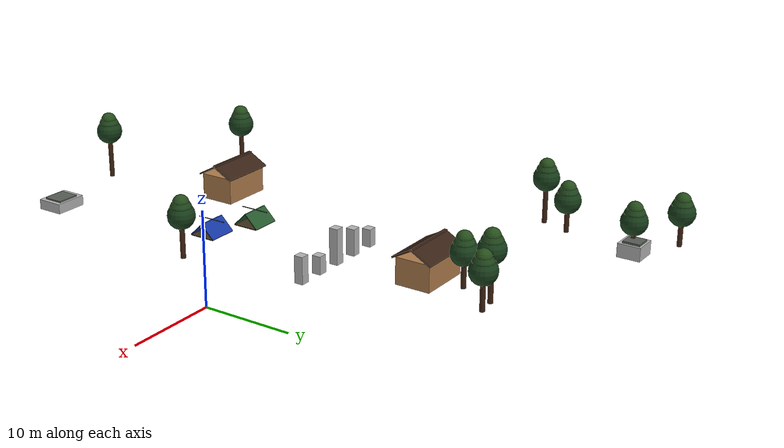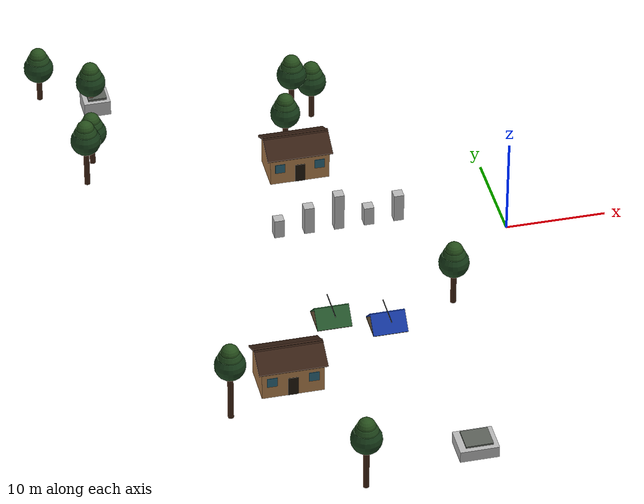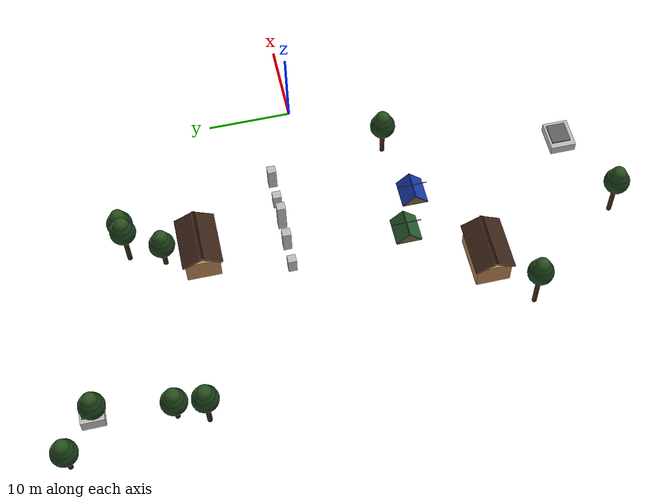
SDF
<sdf version="1.5">
 <world name="forest_rescue">
  <include><uri>model://sun</uri></include>
  <model name="pine_03">
   <static>true</static>
   <pose>-8 -10 .003 0 0 0</pose>
   <link name="structure">
    <visual name="trunk_visual">
     <pose>0 0 2.935254207408066 0.0 0 0</pose>
     <geometry><cylinder><radius>0.28</radius><length>5.870508414816132</length></cylinder></geometry>
     <material><ambient>0.24 0.13 0.07 1</ambient><diffuse>0.24 0.13 0.07 1</diffuse></material>
    </visual>
    <collision name="trunk_collision">
     <pose>0 0 2.935254207408066 0.0 0 0</pose>
     <geometry><cylinder><radius>0.28</radius><length>5.870508414816132</length></cylinder></geometry>
    </collision>
    <visual name="canopy0_visual">
     <pose>0 0 4.770508414816131 0.0 0 0</pose>
     <geometry><sphere><radius>1.5</radius></sphere></geometry>
     <material><ambient>0.1 0.25 0.11 1</ambient><diffuse>0.1 0.25 0.11 1</diffuse></material>
    </visual>
    <collision name="canopy0_collision">
     <pose>0 0 4.770508414816131 0.0 0 0</pose>
     <geometry><sphere><radius>1.5</radius></sphere></geometry>
    </collision>
    <visual name="canopy1_visual">
     <pose>0 0 5.470508414816131 0.0 0 0</pose>
     <geometry><sphere><radius>1.2</radius></sphere></geometry>
     <material><ambient>0.125 0.28 0.11 1</ambient><diffuse>0.125 0.28 0.11 1</diffuse></material>
    </visual>
    <collision name="canopy1_collision">
     <pose>0 0 5.470508414816131 0.0 0 0</pose>
     <geometry><sphere><radius>1.2</radius></sphere></geometry>
    </collision>
    <visual name="canopy2_visual">
     <pose>0 0 6.1705084148161315 0.0 0 0</pose>
     <geometry><sphere><radius>0.9</radius></sphere></geometry>
     <material>
      <ambient>0.15000000000000002 0.31 0.11 1</ambient>
      <diffuse>0.15000000000000002 0.31 0.11 1</diffuse>
     </material>
    </visual>
    <collision name="canopy2_collision">
     <pose>0 0 6.1705084148161315 0.0 0 0</pose>
     <geometry><sphere><radius>0.9</radius></sphere></geometry>
    </collision>
   </link>
  </model>
  <model name="pine_06">
   <static>true</static>
   <pose>-18.092217512255967 18.093078929427023 .003 0 0 0</pose>
   <link name="structure">
    <visual name="trunk_visual">
     <pose>0 0 2.513902598496842 0.0 0 0</pose>
     <geometry><cylinder><radius>0.28</radius><length>5.027805196993684</length></cylinder></geometry>
     <material><ambient>0.24 0.13 0.07 1</ambient><diffuse>0.24 0.13 0.07 1</diffuse></material>
    </visual>
    <collision name="trunk_collision">
     <pose>0 0 2.513902598496842 0.0 0 0</pose>
     <geometry><cylinder><radius>0.28</radius><length>5.027805196993684</length></cylinder></geometry>
    </collision>
    <visual name="canopy0_visual">
     <pose>0 0 3.9278051969936842 0.0 0 0</pose>
     <geometry><sphere><radius>1.5</radius></sphere></geometry>
     <material><ambient>0.1 0.25 0.11 1</ambient><diffuse>0.1 0.25 0.11 1</diffuse></material>
    </visual>
    <collision name="canopy0_collision">
     <pose>0 0 3.9278051969936842 0.0 0 0</pose>
     <geometry><sphere><radius>1.5</radius></sphere></geometry>
    </collision>
    <visual name="canopy1_visual">
     <pose>0 0 4.627805196993684 0.0 0 0</pose>
     <geometry><sphere><radius>1.2</radius></sphere></geometry>
     <material><ambient>0.125 0.28 0.11 1</ambient><diffuse>0.125 0.28 0.11 1</diffuse></material>
    </visual>
    <collision name="canopy1_collision">
     <pose>0 0 4.627805196993684 0.0 0 0</pose>
     <geometry><sphere><radius>1.2</radius></sphere></geometry>
    </collision>
    <visual name="canopy2_visual">
     <pose>0 0 5.327805196993684 0.0 0 0</pose>
     <geometry><sphere><radius>0.9</radius></sphere></geometry>
     <material>
      <ambient>0.15000000000000002 0.31 0.11 1</ambient>
      <diffuse>0.15000000000000002 0.31 0.11 1</diffuse>
     </material>
    </visual>
    <collision name="canopy2_collision">
     <pose>0 0 5.327805196993684 0.0 0 0</pose>
     <geometry><sphere><radius>0.9</radius></sphere></geometry>
    </collision>
   </link>
  </model>
  <model name="pine_07">
   <static>true</static>
   <pose>-40.683437024014694 31.48853568867973 .003 0 0 0</pose>
   <link name="structure">
    <visual name="trunk_visual">
     <pose>0 0 2.4432136218094076 0.0 0 0</pose>
     <geometry><cylinder><radius>0.28</radius><length>4.886427243618815</length></cylinder></geometry>
     <material><ambient>0.24 0.13 0.07 1</ambient><diffuse>0.24 0.13 0.07 1</diffuse></material>
    </visual>
    <collision name="trunk_collision">
     <pose>0 0 2.4432136218094076 0.0 0 0</pose>
     <geometry><cylinder><radius>0.28</radius><length>4.886427243618815</length></cylinder></geometry>
    </collision>
    <visual name="canopy0_visual">
     <pose>0 0 3.786427243618815 0.0 0 0</pose>
     <geometry><sphere><radius>1.5</radius></sphere></geometry>
     <material><ambient>0.1 0.25 0.11 1</ambient><diffuse>0.1 0.25 0.11 1</diffuse></material>
    </visual>
    <collision name="canopy0_collision">
     <pose>0 0 3.786427243618815 0.0 0 0</pose>
     <geometry><sphere><radius>1.5</radius></sphere></geometry>
    </collision>
    <visual name="canopy1_visual">
     <pose>0 0 4.486427243618815 0.0 0 0</pose>
     <geometry><sphere><radius>1.2</radius></sphere></geometry>
     <material><ambient>0.125 0.28 0.11 1</ambient><diffuse>0.125 0.28 0.11 1</diffuse></material>
    </visual>
    <collision name="canopy1_collision">
     <pose>0 0 4.486427243618815 0.0 0 0</pose>
     <geometry><sphere><radius>1.2</radius></sphere></geometry>
    </collision>
    <visual name="canopy2_visual">
     <pose>0 0 5.186427243618815 0.0 0 0</pose>
     <geometry><sphere><radius>0.9</radius></sphere></geometry>
     <material>
      <ambient>0.15000000000000002 0.31 0.11 1</ambient>
      <diffuse>0.15000000000000002 0.31 0.11 1</diffuse>
     </material>
    </visual>
    <collision name="canopy2_collision">
     <pose>0 0 5.186427243618815 0.0 0 0</pose>
     <geometry><sphere><radius>0.9</radius></sphere></geometry>
    </collision>
   </link>
  </model>
  <model name="pine_13">
   <static>true</static>
   <pose>-32.37896573624593 -21.87479106920818 .003 0 0 0</pose>
   <link name="structure">
    <visual name="trunk_visual">
     <pose>0 0 3.6688731987273866 0.0 0 0</pose>
     <geometry><cylinder><radius>0.28</radius><length>7.337746397454773</length></cylinder></geometry>
     <material><ambient>0.24 0.13 0.07 1</ambient><diffuse>0.24 0.13 0.07 1</diffuse></material>
    </visual>
    <collision name="trunk_collision">
     <pose>0 0 3.6688731987273866 0.0 0 0</pose>
     <geometry><cylinder><radius>0.28</radius><length>7.337746397454773</length></cylinder></geometry>
    </collision>
    <visual name="canopy0_visual">
     <pose>0 0 6.237746397454773 0.0 0 0</pose>
     <geometry><sphere><radius>1.5</radius></sphere></geometry>
     <material><ambient>0.1 0.25 0.11 1</ambient><diffuse>0.1 0.25 0.11 1</diffuse></material>
    </visual>
    <collision name="canopy0_collision">
     <pose>0 0 6.237746397454773 0.0 0 0</pose>
     <geometry><sphere><radius>1.5</radius></sphere></geometry>
    </collision>
    <visual name="canopy1_visual">
     <pose>0 0 6.937746397454773 0.0 0 0</pose>
     <geometry><sphere><radius>1.2</radius></sphere></geometry>
     <material><ambient>0.125 0.28 0.11 1</ambient><diffuse>0.125 0.28 0.11 1</diffuse></material>
    </visual>
    <collision name="canopy1_collision">
     <pose>0 0 6.937746397454773 0.0 0 0</pose>
     <geometry><sphere><radius>1.2</radius></sphere></geometry>
    </collision>
    <visual name="canopy2_visual">
     <pose>0 0 7.637746397454773 0.0 0 0</pose>
     <geometry><sphere><radius>0.9</radius></sphere></geometry>
     <material>
      <ambient>0.15000000000000002 0.31 0.11 1</ambient>
      <diffuse>0.15000000000000002 0.31 0.11 1</diffuse>
     </material>
    </visual>
    <collision name="canopy2_collision">
     <pose>0 0 7.637746397454773 0.0 0 0</pose>
     <geometry><sphere><radius>0.9</radius></sphere></geometry>
    </collision>
   </link>
  </model>
  <model name="pine_14">
   <static>true</static>
   <pose>-35.95970854441214 28.163332215921564 .003 0 0 0</pose>
   <link name="structure">
    <visual name="trunk_visual">
     <pose>0 0 2.336525133122039 0.0 0 0</pose>
     <geometry><cylinder><radius>0.28</radius><length>4.673050266244078</length></cylinder></geometry>
     <material><ambient>0.24 0.13 0.07 1</ambient><diffuse>0.24 0.13 0.07 1</diffuse></material>
    </visual>
    <collision name="trunk_collision">
     <pose>0 0 2.336525133122039 0.0 0 0</pose>
     <geometry><cylinder><radius>0.28</radius><length>4.673050266244078</length></cylinder></geometry>
    </collision>
    <visual name="canopy0_visual">
     <pose>0 0 3.573050266244078 0.0 0 0</pose>
     <geometry><sphere><radius>1.5</radius></sphere></geometry>
     <material><ambient>0.1 0.25 0.11 1</ambient><diffuse>0.1 0.25 0.11 1</diffuse></material>
    </visual>
    <collision name="canopy0_collision">
     <pose>0 0 3.573050266244078 0.0 0 0</pose>
     <geometry><sphere><radius>1.5</radius></sphere></geometry>
    </collision>
    <visual name="canopy1_visual">
     <pose>0 0 4.273050266244078 0.0 0 0</pose>
     <geometry><sphere><radius>1.2</radius></sphere></geometry>
     <material><ambient>0.125 0.28 0.11 1</ambient><diffuse>0.125 0.28 0.11 1</diffuse></material>
    </visual>
    <collision name="canopy1_collision">
     <pose>0 0 4.273050266244078 0.0 0 0</pose>
     <geometry><sphere><radius>1.2</radius></sphere></geometry>
    </collision>
    <visual name="canopy2_visual">
     <pose>0 0 4.973050266244078 0.0 0 0</pose>
     <geometry><sphere><radius>0.9</radius></sphere></geometry>
     <material>
      <ambient>0.15000000000000002 0.31 0.11 1</ambient>
      <diffuse>0.15000000000000002 0.31 0.11 1</diffuse>
     </material>
    </visual>
    <collision name="canopy2_collision">
     <pose>0 0 4.973050266244078 0.0 0 0</pose>
     <geometry><sphere><radius>0.9</radius></sphere></geometry>
    </collision>
   </link>
  </model>
  <model name="pine_19">
   <static>true</static>
   <pose>-22.450595378356404 -34.190451426229075 .003 0 0 0</pose>
   <link name="structure">
    <visual name="trunk_visual">
     <pose>0 0 3.4005398954817867 0.0 0 0</pose>
     <geometry><cylinder><radius>0.28</radius><length>6.801079790963573</length></cylinder></geometry>
     <material><ambient>0.24 0.13 0.07 1</ambient><diffuse>0.24 0.13 0.07 1</diffuse></material>
    </visual>
    <collision name="trunk_collision">
     <pose>0 0 3.4005398954817867 0.0 0 0</pose>
     <geometry><cylinder><radius>0.28</radius><length>6.801079790963573</length></cylinder></geometry>
    </collision>
    <visual name="canopy0_visual">
     <pose>0 0 5.701079790963574 0.0 0 0</pose>
     <geometry><sphere><radius>1.5</radius></sphere></geometry>
     <material><ambient>0.1 0.25 0.11 1</ambient><diffuse>0.1 0.25 0.11 1</diffuse></material>
    </visual>
    <collision name="canopy0_collision">
     <pose>0 0 5.701079790963574 0.0 0 0</pose>
     <geometry><sphere><radius>1.5</radius></sphere></geometry>
    </collision>
    <visual name="canopy1_visual">
     <pose>0 0 6.401079790963574 0.0 0 0</pose>
     <geometry><sphere><radius>1.2</radius></sphere></geometry>
     <material><ambient>0.125 0.28 0.11 1</ambient><diffuse>0.125 0.28 0.11 1</diffuse></material>
    </visual>
    <collision name="canopy1_collision">
     <pose>0 0 6.401079790963574 0.0 0 0</pose>
     <geometry><sphere><radius>1.2</radius></sphere></geometry>
    </collision>
    <visual name="canopy2_visual">
     <pose>0 0 7.101079790963574 0.0 0 0</pose>
     <geometry><sphere><radius>0.9</radius></sphere></geometry>
     <material>
      <ambient>0.15000000000000002 0.31 0.11 1</ambient>
      <diffuse>0.15000000000000002 0.31 0.11 1</diffuse>
     </material>
    </visual>
    <collision name="canopy2_collision">
     <pose>0 0 7.101079790963574 0.0 0 0</pose>
     <geometry><sphere><radius>0.9</radius></sphere></geometry>
    </collision>
   </link>
  </model>
  <model name="pine_21">
   <static>true</static>
   <pose>-37.475531759586985 19.662202531121167 .003 0 0 0</pose>
   <link name="structure">
    <visual name="trunk_visual">
     <pose>0 0 2.3812798704858555 0.0 0 0</pose>
     <geometry><cylinder><radius>0.28</radius><length>4.762559740971711</length></cylinder></geometry>
     <material><ambient>0.24 0.13 0.07 1</ambient><diffuse>0.24 0.13 0.07 1</diffuse></material>
    </visual>
    <collision name="trunk_collision">
     <pose>0 0 2.3812798704858555 0.0 0 0</pose>
     <geometry><cylinder><radius>0.28</radius><length>4.762559740971711</length></cylinder></geometry>
    </collision>
    <visual name="canopy0_visual">
     <pose>0 0 3.662559740971711 0.0 0 0</pose>
     <geometry><sphere><radius>1.5</radius></sphere></geometry>
     <material><ambient>0.1 0.25 0.11 1</ambient><diffuse>0.1 0.25 0.11 1</diffuse></material>
    </visual>
    <collision name="canopy0_collision">
     <pose>0 0 3.662559740971711 0.0 0 0</pose>
     <geometry><sphere><radius>1.5</radius></sphere></geometry>
    </collision>
    <visual name="canopy1_visual">
     <pose>0 0 4.362559740971711 0.0 0 0</pose>
     <geometry><sphere><radius>1.2</radius></sphere></geometry>
     <material><ambient>0.125 0.28 0.11 1</ambient><diffuse>0.125 0.28 0.11 1</diffuse></material>
    </visual>
    <collision name="canopy1_collision">
     <pose>0 0 4.362559740971711 0.0 0 0</pose>
     <geometry><sphere><radius>1.2</radius></sphere></geometry>
    </collision>
    <visual name="canopy2_visual">
     <pose>0 0 5.062559740971711 0.0 0 0</pose>
     <geometry><sphere><radius>0.9</radius></sphere></geometry>
     <material>
      <ambient>0.15000000000000002 0.31 0.11 1</ambient>
      <diffuse>0.15000000000000002 0.31 0.11 1</diffuse>
     </material>
    </visual>
    <collision name="canopy2_collision">
     <pose>0 0 5.062559740971711 0.0 0 0</pose>
     <geometry><sphere><radius>0.9</radius></sphere></geometry>
    </collision>
   </link>
  </model>
  <model name="pine_23">
   <static>true</static>
   <pose>-16.545680576402596 22.05870089861615 .003 0 0 0</pose>
   <link name="structure">
    <visual name="trunk_visual">
     <pose>0 0 3.3638797343803404 0.0 0 0</pose>
     <geometry><cylinder><radius>0.28</radius><length>6.727759468760681</length></cylinder></geometry>
     <material><ambient>0.24 0.13 0.07 1</ambient><diffuse>0.24 0.13 0.07 1</diffuse></material>
    </visual>
    <collision name="trunk_collision">
     <pose>0 0 3.3638797343803404 0.0 0 0</pose>
     <geometry><cylinder><radius>0.28</radius><length>6.727759468760681</length></cylinder></geometry>
    </collision>
    <visual name="canopy0_visual">
     <pose>0 0 5.627759468760681 0.0 0 0</pose>
     <geometry><sphere><radius>1.5</radius></sphere></geometry>
     <material><ambient>0.1 0.25 0.11 1</ambient><diffuse>0.1 0.25 0.11 1</diffuse></material>
    </visual>
    <collision name="canopy0_collision">
     <pose>0 0 5.627759468760681 0.0 0 0</pose>
     <geometry><sphere><radius>1.5</radius></sphere></geometry>
    </collision>
    <visual name="canopy1_visual">
     <pose>0 0 6.327759468760681 0.0 0 0</pose>
     <geometry><sphere><radius>1.2</radius></sphere></geometry>
     <material><ambient>0.125 0.28 0.11 1</ambient><diffuse>0.125 0.28 0.11 1</diffuse></material>
    </visual>
    <collision name="canopy1_collision">
     <pose>0 0 6.327759468760681 0.0 0 0</pose>
     <geometry><sphere><radius>1.2</radius></sphere></geometry>
    </collision>
    <visual name="canopy2_visual">
     <pose>0 0 7.0277594687606815 0.0 0 0</pose>
     <geometry><sphere><radius>0.9</radius></sphere></geometry>
     <material>
      <ambient>0.15000000000000002 0.31 0.11 1</ambient>
      <diffuse>0.15000000000000002 0.31 0.11 1</diffuse>
     </material>
    </visual>
    <collision name="canopy2_collision">
     <pose>0 0 7.0277594687606815 0.0 0 0</pose>
     <geometry><sphere><radius>0.9</radius></sphere></geometry>
    </collision>
   </link>
  </model>
  <model name="pine_24">
   <static>true</static>
   <pose>-14.44170565833339 22.367120461057898 .003 0 0 0</pose>
   <link name="structure">
    <visual name="trunk_visual">
     <pose>0 0 2.672982528013274 0.0 0 0</pose>
     <geometry><cylinder><radius>0.28</radius><length>5.345965056026548</length></cylinder></geometry>
     <material><ambient>0.24 0.13 0.07 1</ambient><diffuse>0.24 0.13 0.07 1</diffuse></material>
    </visual>
    <collision name="trunk_collision">
     <pose>0 0 2.672982528013274 0.0 0 0</pose>
     <geometry><cylinder><radius>0.28</radius><length>5.345965056026548</length></cylinder></geometry>
    </collision>
    <visual name="canopy0_visual">
     <pose>0 0 4.245965056026549 0.0 0 0</pose>
     <geometry><sphere><radius>1.5</radius></sphere></geometry>
     <material><ambient>0.1 0.25 0.11 1</ambient><diffuse>0.1 0.25 0.11 1</diffuse></material>
    </visual>
    <collision name="canopy0_collision">
     <pose>0 0 4.245965056026549 0.0 0 0</pose>
     <geometry><sphere><radius>1.5</radius></sphere></geometry>
    </collision>
    <visual name="canopy1_visual">
     <pose>0 0 4.945965056026549 0.0 0 0</pose>
     <geometry><sphere><radius>1.2</radius></sphere></geometry>
     <material><ambient>0.125 0.28 0.11 1</ambient><diffuse>0.125 0.28 0.11 1</diffuse></material>
    </visual>
    <collision name="canopy1_collision">
     <pose>0 0 4.945965056026549 0.0 0 0</pose>
     <geometry><sphere><radius>1.2</radius></sphere></geometry>
    </collision>
    <visual name="canopy2_visual">
     <pose>0 0 5.645965056026549 0.0 0 0</pose>
     <geometry><sphere><radius>0.9</radius></sphere></geometry>
     <material>
      <ambient>0.15000000000000002 0.31 0.11 1</ambient>
      <diffuse>0.15000000000000002 0.31 0.11 1</diffuse>
     </material>
    </visual>
    <collision name="canopy2_collision">
     <pose>0 0 5.645965056026549 0.0 0 0</pose>
     <geometry><sphere><radius>0.9</radius></sphere></geometry>
    </collision>
   </link>
  </model>
  <model name="pine_25">
   <static>true</static>
   <pose>-38.64619023515901 16.365087523132704 .003 0 0 0</pose>
   <link name="structure">
    <visual name="trunk_visual">
     <pose>0 0 3.181494259658085 0.0 0 0</pose>
     <geometry><cylinder><radius>0.28</radius><length>6.36298851931617</length></cylinder></geometry>
     <material><ambient>0.24 0.13 0.07 1</ambient><diffuse>0.24 0.13 0.07 1</diffuse></material>
    </visual>
    <collision name="trunk_collision">
     <pose>0 0 3.181494259658085 0.0 0 0</pose>
     <geometry><cylinder><radius>0.28</radius><length>6.36298851931617</length></cylinder></geometry>
    </collision>
    <visual name="canopy0_visual">
     <pose>0 0 5.2629885193161705 0.0 0 0</pose>
     <geometry><sphere><radius>1.5</radius></sphere></geometry>
     <material><ambient>0.1 0.25 0.11 1</ambient><diffuse>0.1 0.25 0.11 1</diffuse></material>
    </visual>
    <collision name="canopy0_collision">
     <pose>0 0 5.2629885193161705 0.0 0 0</pose>
     <geometry><sphere><radius>1.5</radius></sphere></geometry>
    </collision>
    <visual name="canopy1_visual">
     <pose>0 0 5.962988519316171 0.0 0 0</pose>
     <geometry><sphere><radius>1.2</radius></sphere></geometry>
     <material><ambient>0.125 0.28 0.11 1</ambient><diffuse>0.125 0.28 0.11 1</diffuse></material>
    </visual>
    <collision name="canopy1_collision">
     <pose>0 0 5.962988519316171 0.0 0 0</pose>
     <geometry><sphere><radius>1.2</radius></sphere></geometry>
    </collision>
    <visual name="canopy2_visual">
     <pose>0 0 6.662988519316171 0.0 0 0</pose>
     <geometry><sphere><radius>0.9</radius></sphere></geometry>
     <material>
      <ambient>0.15000000000000002 0.31 0.11 1</ambient>
      <diffuse>0.15000000000000002 0.31 0.11 1</diffuse>
     </material>
    </visual>
    <collision name="canopy2_collision">
     <pose>0 0 6.662988519316171 0.0 0 0</pose>
     <geometry><sphere><radius>0.9</radius></sphere></geometry>
    </collision>
   </link>
  </model>
  <model name="rock_04">
   <static>true</static>
   <pose>-35.498410126116866 28.524250515258593 .003 0 0 0</pose>
   <link name="structure">
    <visual name="stone_visual">
     <pose>0 0 0.7831991721290235 0.0 0 0</pose>
     <geometry><box><size>2.6871834356250326 2.636489478046009 1.566398344258047</size></box></geometry>
     <material>
      <script>
       <uri>file:///home/fxxk/px4_agent/scene/materials/scripts</uri>
       <uri>file:///home/fxxk/px4_agent/scene/materials/textures</uri>
       <name>Yard/concrete</name>
      </script>
     </material>
    </visual>
    <collision name="stone_collision">
     <pose>0 0 0.7831991721290235 0.0 0 0</pose>
     <geometry><box><size>2.6871834356250326 2.636489478046009 1.566398344258047</size></box></geometry>
    </collision>
    <visual name="cap_visual">
     <pose>0.1 0.1 1.566398344258047 0.0 0 0</pose>
     <geometry><box><size>1.8810284049375228 1.9773671085345068 0.46991950327741405</size></box></geometry>
     <material><ambient>0.36 0.38 0.35 1</ambient><diffuse>0.36 0.38 0.35 1</diffuse></material>
    </visual>
    <collision name="cap_collision">
     <pose>0.1 0.1 1.566398344258047 0.0 0 0</pose>
     <geometry><box><size>1.8810284049375228 1.9773671085345068 0.46991950327741405</size></box></geometry>
    </collision>
   </link>
  </model>
  <model name="rock_05">
   <static>true</static>
   <pose>-11.416261000592382 -31.461616698079133 .003 0 0 0</pose>
   <link name="structure">
    <visual name="stone_visual">
     <pose>0 0 0.5805302734684556 0.0 0 0</pose>
     <geometry><box><size>3.7340470008825286 3.0388882074159502 1.1610605469369113</size></box></geometry>
     <material>
      <script>
       <uri>file:///home/fxxk/px4_agent/scene/materials/scripts</uri>
       <uri>file:///home/fxxk/px4_agent/scene/materials/textures</uri>
       <name>Yard/concrete</name>
      </script>
     </material>
    </visual>
    <collision name="stone_collision">
     <pose>0 0 0.5805302734684556 0.0 0 0</pose>
     <geometry><box><size>3.7340470008825286 3.0388882074159502 1.1610605469369113</size></box></geometry>
    </collision>
    <visual name="cap_visual">
     <pose>0.1 0.1 1.1610605469369113 0.0 0 0</pose>
     <geometry><box><size>2.61383290061777 2.2791661555619624 0.34831816408107336</size></box></geometry>
     <material><ambient>0.36 0.38 0.35 1</ambient><diffuse>0.36 0.38 0.35 1</diffuse></material>
    </visual>
    <collision name="cap_collision">
     <pose>0.1 0.1 1.1610605469369113 0.0 0 0</pose>
     <geometry><box><size>2.61383290061777 2.2791661555619624 0.34831816408107336</size></box></geometry>
    </collision>
   </link>
  </model>
  <model name="woodland_cabin_1">
   <static>true</static>
   <pose>-18 14 .003 0 0 0</pose>
   <link name="structure">
    <visual name="walls_visual">
     <pose>0 0 1.5 0.0 0 0</pose>
     <geometry><box><size>6 4 3</size></box></geometry>
     <material>
      <script>
       <uri>file:///home/fxxk/px4_agent/scene/materials/scripts</uri>
       <uri>file:///home/fxxk/px4_agent/scene/materials/textures</uri>
       <name>Yard/wood</name>
      </script>
     </material>
    </visual>
    <collision name="walls_collision">
     <pose>0 0 1.5 0.0 0 0</pose>
     <geometry><box><size>6 4 3</size></box></geometry>
    </collision>
    <visual name="roof-1_visual">
     <pose>0 -1.05 3.65 0.5 0 0</pose>
     <geometry><box><size>6.6 2.8 0.18</size></box></geometry>
     <material><ambient>0.22 0.13 0.08 1</ambient><diffuse>0.22 0.13 0.08 1</diffuse></material>
    </visual>
    <collision name="roof-1_collision">
     <pose>0 -1.05 3.65 0.5 0 0</pose>
     <geometry><box><size>6.6 2.8 0.18</size></box></geometry>
    </collision>
    <visual name="roof1_visual">
     <pose>0 1.05 3.65 -0.5 0 0</pose>
     <geometry><box><size>6.6 2.8 0.18</size></box></geometry>
     <material><ambient>0.22 0.13 0.08 1</ambient><diffuse>0.22 0.13 0.08 1</diffuse></material>
    </visual>
    <collision name="roof1_collision">
     <pose>0 1.05 3.65 -0.5 0 0</pose>
     <geometry><box><size>6.6 2.8 0.18</size></box></geometry>
    </collision>
    <visual name="door_visual">
     <pose>0 -2.02 1 0.0 0 0</pose>
     <geometry><box><size>1 0.03 2</size></box></geometry>
     <material><ambient>0.12 0.08 0.04 1</ambient><diffuse>0.12 0.08 0.04 1</diffuse></material>
    </visual>
    <visual name="window-2_visual">
     <pose>-2 -2.03 1.8 0.0 0 0</pose>
     <geometry><box><size>1 0.04 1</size></box></geometry>
     <material><ambient>0.17 0.4 0.48 1</ambient><diffuse>0.17 0.4 0.48 1</diffuse></material>
    </visual>
    <visual name="window2_visual">
     <pose>2 -2.03 1.8 0.0 0 0</pose>
     <geometry><box><size>1 0.04 1</size></box></geometry>
     <material><ambient>0.17 0.4 0.48 1</ambient><diffuse>0.17 0.4 0.48 1</diffuse></material>
    </visual>
   </link>
  </model>
  <model name="woodland_cabin_2">
   <static>true</static>
   <pose>-26 -18 .003 0 0 0</pose>
   <link name="structure">
    <visual name="walls_visual">
     <pose>0 0 1.5 0.0 0 0</pose>
     <geometry><box><size>6 4 3</size></box></geometry>
     <material>
      <script>
       <uri>file:///home/fxxk/px4_agent/scene/materials/scripts</uri>
       <uri>file:///home/fxxk/px4_agent/scene/materials/textures</uri>
       <name>Yard/wood</name>
      </script>
     </material>
    </visual>
    <collision name="walls_collision">
     <pose>0 0 1.5 0.0 0 0</pose>
     <geometry><box><size>6 4 3</size></box></geometry>
    </collision>
    <visual name="roof-1_visual">
     <pose>0 -1.05 3.65 0.5 0 0</pose>
     <geometry><box><size>6.6 2.8 0.18</size></box></geometry>
     <material><ambient>0.22 0.13 0.08 1</ambient><diffuse>0.22 0.13 0.08 1</diffuse></material>
    </visual>
    <collision name="roof-1_collision">
     <pose>0 -1.05 3.65 0.5 0 0</pose>
     <geometry><box><size>6.6 2.8 0.18</size></box></geometry>
    </collision>
    <visual name="roof1_visual">
     <pose>0 1.05 3.65 -0.5 0 0</pose>
     <geometry><box><size>6.6 2.8 0.18</size></box></geometry>
     <material><ambient>0.22 0.13 0.08 1</ambient><diffuse>0.22 0.13 0.08 1</diffuse></material>
    </visual>
    <collision name="roof1_collision">
     <pose>0 1.05 3.65 -0.5 0 0</pose>
     <geometry><box><size>6.6 2.8 0.18</size></box></geometry>
    </collision>
    <visual name="door_visual">
     <pose>0 -2.02 1 0.0 0 0</pose>
     <geometry><box><size>1 0.03 2</size></box></geometry>
     <material><ambient>0.12 0.08 0.04 1</ambient><diffuse>0.12 0.08 0.04 1</diffuse></material>
    </visual>
    <visual name="window-2_visual">
     <pose>-2 -2.03 1.8 0.0 0 0</pose>
     <geometry><box><size>1 0.04 1</size></box></geometry>
     <material><ambient>0.17 0.4 0.48 1</ambient><diffuse>0.17 0.4 0.48 1</diffuse></material>
    </visual>
    <visual name="window2_visual">
     <pose>2 -2.03 1.8 0.0 0 0</pose>
     <geometry><box><size>1 0.04 1</size></box></geometry>
     <material><ambient>0.17 0.4 0.48 1</ambient><diffuse>0.17 0.4 0.48 1</diffuse></material>
    </visual>
   </link>
  </model>
  <model name="blue_camp_tent">
   <static>true</static>
   <pose>-15 -12 .003 0 0 0</pose>
   <link name="structure">
    <visual name="canvas-1_visual">
     <pose>0 -0.75 0.84 0.78 0 0</pose>
     <geometry><box><size>3.4 2.2 0.08</size></box></geometry>
     <material><ambient>0.08 0.22 0.65 1</ambient><diffuse>0.08 0.22 0.65 1</diffuse></material>
    </visual>
    <collision name="canvas-1_collision">
     <pose>0 -0.75 0.84 0.78 0 0</pose>
     <geometry><box><size>3.4 2.2 0.08</size></box></geometry>
    </collision>
    <visual name="canvas1_visual">
     <pose>0 0.75 0.84 -0.78 0 0</pose>
     <geometry><box><size>3.4 2.2 0.08</size></box></geometry>
     <material><ambient>0.08 0.22 0.65 1</ambient><diffuse>0.08 0.22 0.65 1</diffuse></material>
    </visual>
    <collision name="canvas1_collision">
     <pose>0 0.75 0.84 -0.78 0 0</pose>
     <geometry><box><size>3.4 2.2 0.08</size></box></geometry>
    </collision>
    <visual name="floor_visual">
     <pose>0 0 0.04 0.0 0 0</pose>
     <geometry><box><size>3.4 3 0.08</size></box></geometry>
     <material><ambient>0.26 0.2 0.12 1</ambient><diffuse>0.26 0.2 0.12 1</diffuse></material>
    </visual>
    <collision name="floor_collision">
     <pose>0 0 0.04 0.0 0 0</pose>
     <geometry><box><size>3.4 3 0.08</size></box></geometry>
    </collision>
    <visual name="ridge_visual">
     <pose>0 0 1.65 1.5707963267948966 0 0</pose>
     <geometry><cylinder><radius>0.045</radius><length>3.5</length></cylinder></geometry>
     <material><ambient>0.15 0.15 0.15 1</ambient><diffuse>0.15 0.15 0.15 1</diffuse></material>
    </visual>
    <collision name="ridge_collision">
     <pose>0 0 1.65 1.5707963267948966 0 0</pose>
     <geometry><cylinder><radius>0.045</radius><length>3.5</length></cylinder></geometry>
    </collision>
   </link>
  </model>
  <model name="green_camp_tent">
   <static>true</static>
   <pose>-20 -10 .003 0 0 0</pose>
   <link name="structure">
    <visual name="canvas-1_visual">
     <pose>0 -0.75 0.84 0.78 0 0</pose>
     <geometry><box><size>3.4 2.2 0.08</size></box></geometry>
     <material><ambient>0.15 0.35 0.18 1</ambient><diffuse>0.15 0.35 0.18 1</diffuse></material>
    </visual>
    <collision name="canvas-1_collision">
     <pose>0 -0.75 0.84 0.78 0 0</pose>
     <geometry><box><size>3.4 2.2 0.08</size></box></geometry>
    </collision>
    <visual name="canvas1_visual">
     <pose>0 0.75 0.84 -0.78 0 0</pose>
     <geometry><box><size>3.4 2.2 0.08</size></box></geometry>
     <material><ambient>0.15 0.35 0.18 1</ambient><diffuse>0.15 0.35 0.18 1</diffuse></material>
    </visual>
    <collision name="canvas1_collision">
     <pose>0 0.75 0.84 -0.78 0 0</pose>
     <geometry><box><size>3.4 2.2 0.08</size></box></geometry>
    </collision>
    <visual name="floor_visual">
     <pose>0 0 0.04 0.0 0 0</pose>
     <geometry><box><size>3.4 3 0.08</size></box></geometry>
     <material><ambient>0.26 0.2 0.12 1</ambient><diffuse>0.26 0.2 0.12 1</diffuse></material>
    </visual>
    <collision name="floor_collision">
     <pose>0 0 0.04 0.0 0 0</pose>
     <geometry><box><size>3.4 3 0.08</size></box></geometry>
    </collision>
    <visual name="ridge_visual">
     <pose>0 0 1.65 1.5707963267948966 0 0</pose>
     <geometry><cylinder><radius>0.045</radius><length>3.5</length></cylinder></geometry>
     <material><ambient>0.15 0.15 0.15 1</ambient><diffuse>0.15 0.15 0.15 1</diffuse></material>
    </visual>
    <collision name="ridge_collision">
     <pose>0 0 1.65 1.5707963267948966 0 0</pose>
     <geometry><cylinder><radius>0.045</radius><length>3.5</length></cylinder></geometry>
    </collision>
   </link>
  </model>
  <model name="ruin_pillar_0">
   <static>true</static>
   <pose>-22 4 .003 0 0 0</pose>
   <link name="structure">
    <visual name="pillar_visual">
     <pose>0 0 1.0 0.0 0 0</pose>
     <geometry><box><size>1 1 2</size></box></geometry>
     <material>
      <script>
       <uri>file:///home/fxxk/px4_agent/scene/materials/scripts</uri>
       <uri>file:///home/fxxk/px4_agent/scene/materials/textures</uri>
       <name>Yard/brick</name>
      </script>
     </material>
    </visual>
    <collision name="pillar_collision">
     <pose>0 0 1.0 0.0 0 0</pose>
     <geometry><box><size>1 1 2</size></box></geometry>
    </collision>
   </link>
  </model>
  <model name="ruin_pillar_1">
   <static>true</static>
   <pose>-19 4 .003 0 0 0</pose>
   <link name="structure">
    <visual name="pillar_visual">
     <pose>0 0 1.5 0.0 0 0</pose>
     <geometry><box><size>1 1 3</size></box></geometry>
     <material>
      <script>
       <uri>file:///home/fxxk/px4_agent/scene/materials/scripts</uri>
       <uri>file:///home/fxxk/px4_agent/scene/materials/textures</uri>
       <name>Yard/brick</name>
      </script>
     </material>
    </visual>
    <collision name="pillar_collision">
     <pose>0 0 1.5 0.0 0 0</pose>
     <geometry><box><size>1 1 3</size></box></geometry>
    </collision>
   </link>
  </model>
  <model name="ruin_pillar_2">
   <static>true</static>
   <pose>-16 4 .003 0 0 0</pose>
   <link name="structure">
    <visual name="pillar_visual">
     <pose>0 0 2.0 0.0 0 0</pose>
     <geometry><box><size>1 1 4</size></box></geometry>
     <material>
      <script>
       <uri>file:///home/fxxk/px4_agent/scene/materials/scripts</uri>
       <uri>file:///home/fxxk/px4_agent/scene/materials/textures</uri>
       <name>Yard/brick</name>
      </script>
     </material>
    </visual>
    <collision name="pillar_collision">
     <pose>0 0 2.0 0.0 0 0</pose>
     <geometry><box><size>1 1 4</size></box></geometry>
    </collision>
   </link>
  </model>
  <model name="ruin_pillar_3">
   <static>true</static>
   <pose>-13 4 .003 0 0 0</pose>
   <link name="structure">
    <visual name="pillar_visual">
     <pose>0 0 1.0 0.0 0 0</pose>
     <geometry><box><size>1 1 2</size></box></geometry>
     <material>
      <script>
       <uri>file:///home/fxxk/px4_agent/scene/materials/scripts</uri>
       <uri>file:///home/fxxk/px4_agent/scene/materials/textures</uri>
       <name>Yard/brick</name>
      </script>
     </material>
    </visual>
    <collision name="pillar_collision">
     <pose>0 0 1.0 0.0 0 0</pose>
     <geometry><box><size>1 1 2</size></box></geometry>
    </collision>
   </link>
  </model>
  <model name="ruin_pillar_4">
   <static>true</static>
   <pose>-10 4 .003 0 0 0</pose>
   <link name="structure">
    <visual name="pillar_visual">
     <pose>0 0 1.5 0.0 0 0</pose>
     <geometry><box><size>1 1 3</size></box></geometry>
     <material>
      <script>
       <uri>file:///home/fxxk/px4_agent/scene/materials/scripts</uri>
       <uri>file:///home/fxxk/px4_agent/scene/materials/textures</uri>
       <name>Yard/brick</name>
      </script>
     </material>
    </visual>
    <collision name="pillar_collision">
     <pose>0 0 1.5 0.0 0 0</pose>
     <geometry><box><size>1 1 3</size></box></geometry>
    </collision>
   </link>
  </model>
 </world>
</sdf>
